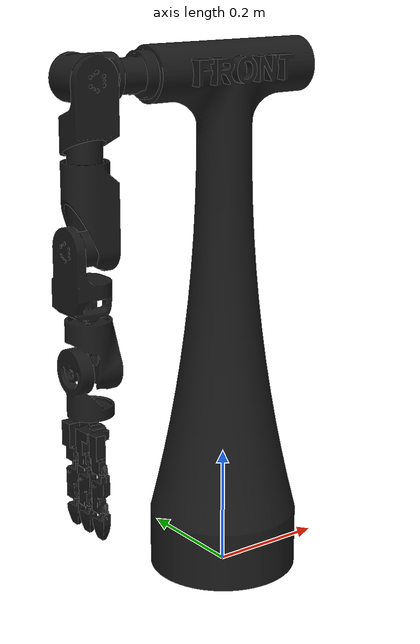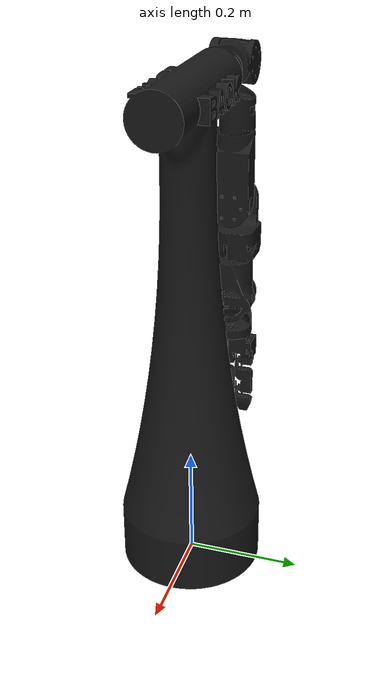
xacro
<?xml version="1.0"?>
<robot xmlns:xacro="http://www.ros.org/wiki/xacro" name="JAXV2_Assembly">

  <!-- Materials (shared across all assemblies) -->
  <material name="Acetal_Resin_White">
    <color rgba="0.098 0.098 0.098 1.0"/>
  </material>
  <material name="Generic">
    <color rgba="0.098 0.098 0.098 1.0"/>
  </material>

  <!-- Assembly includes -->
  <xacro:include filename="$(find JAXV2_Assembly_description)/urdf/assemblies/JAXV2_Assembly.urdf.xacro"/>

  <!-- Instantiate assemblies -->
  <xacro:JAXV2_Assembly prefix=""/>

</robot>

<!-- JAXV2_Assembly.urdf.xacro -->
<robot xmlns:xacro="http://www.ros.org/wiki/xacro" name="JAXV2_Assembly_macro">

  <xacro:macro name="JAXV2_Assembly" params="prefix">

    <!-- Links -->
    <link name="${prefix}base_link">
      <inertial>
        <origin xyz="0.000001 -0.000024 0.310385" rpy="0 0 0"/>
        <mass value="18.851839"/>
        <inertia ixx="1.411093e+00" ixy="-2.540148e-05" ixz="-3.122552e-06"
                 iyy="1.424626e+00" iyz="2.611578e-04" izz="1.017141e-01"/>
      </inertial>
      <visual>
        <origin xyz="0.000000 0.000000 0.000000" rpy="0.000000 0.000000 0.000000"/>
        <geometry>
          <mesh filename="package://JAXV2_Assembly_description/meshes/JAXV2_Assembly/base_link.dae" scale="1 1 1"/>
        </geometry>
        <material name="Acetal_Resin_White"/>
      </visual>
      <collision>
        <origin xyz="0.000000 0.000000 0.000000" rpy="0.000000 0.000000 0.000000"/>
        <geometry>
          <mesh filename="package://JAXV2_Assembly_description/meshes/JAXV2_Assembly/base_link_collision.stl" scale="0.01 0.01 0.01"/>
        </geometry>
      </collision>
    </link>

    <link name="${prefix}Shoulder_Pitch">
      <inertial>
        <origin xyz="-0.024397 0.000000 0.000306" rpy="0 0 0"/>
        <mass value="0.997346"/>
        <inertia ixx="3.940360e-04" ixy="0.000000e+00" ixz="-5.849335e-06"
                 iyy="4.417818e-04" iyz="0.000000e+00" izz="4.490818e-04"/>
      </inertial>
      <visual>
        <origin xyz="0.000000 0.000000 0.000000" rpy="0.000000 0.000000 0.000000"/>
        <geometry>
          <mesh filename="package://JAXV2_Assembly_description/meshes/JAXV2_Assembly/Shoulder_Pitch.dae" scale="1 1 1"/>
        </geometry>
        <material name="Acetal_Resin_White"/>
      </visual>
      <collision>
        <origin xyz="0.000000 0.000000 0.000000" rpy="0.000000 0.000000 0.000000"/>
        <geometry>
          <mesh filename="package://JAXV2_Assembly_description/meshes/JAXV2_Assembly/Shoulder_Pitch_collision.stl" scale="0.01 0.01 0.01"/>
        </geometry>
      </collision>
    </link>

    <link name="${prefix}Shoulder_Roll">
      <inertial>
        <origin xyz="0.002826 -0.000221 0.047977" rpy="0 0 0"/>
        <mass value="1.087699"/>
        <inertia ixx="5.655319e-04" ixy="4.646552e-06" ixz="-1.110163e-06"
                 iyy="5.931985e-04" iyz="4.857296e-07" izz="5.175399e-04"/>
      </inertial>
      <visual>
        <origin xyz="0.000000 0.000000 0.000000" rpy="1.570796 1.570796 0.000000"/>
        <geometry>
          <mesh filename="package://JAXV2_Assembly_description/meshes/JAXV2_Assembly/Shoulder_Roll.dae" scale="1 1 1"/>
        </geometry>
        <material name="Acetal_Resin_White"/>
      </visual>
      <collision>
        <origin xyz="0.000000 0.000000 0.000000" rpy="1.570796 1.570796 0.000000"/>
        <geometry>
          <mesh filename="package://JAXV2_Assembly_description/meshes/JAXV2_Assembly/Shoulder_Roll_collision.stl" scale="0.01 0.01 0.01"/>
        </geometry>
      </collision>
    </link>

    <link name="${prefix}Shoulder_Yaw">
      <inertial>
        <origin xyz="-0.000000 0.091392 0.022139" rpy="0 0 0"/>
        <mass value="1.145356"/>
        <inertia ixx="1.277749e-03" ixy="-3.698747e-11" ixz="-1.590802e-11"
                 iyy="6.057515e-04" iyz="-2.581956e-04" izz="1.242378e-03"/>
      </inertial>
      <visual>
        <origin xyz="0.000000 0.000000 -0.004500" rpy="1.570796 0.000000 0.000000"/>
        <geometry>
          <mesh filename="package://JAXV2_Assembly_description/meshes/JAXV2_Assembly/Shoulder_Yaw.dae" scale="1 1 1"/>
        </geometry>
        <material name="Acetal_Resin_White"/>
      </visual>
      <collision>
        <origin xyz="0.000000 0.000000 -0.004500" rpy="1.570796 0.000000 0.000000"/>
        <geometry>
          <mesh filename="package://JAXV2_Assembly_description/meshes/JAXV2_Assembly/Shoulder_Yaw_collision.stl" scale="0.01 0.01 0.01"/>
        </geometry>
      </collision>
    </link>

    <link name="${prefix}Upper_Arm">
      <inertial>
        <origin xyz="0.008735 0.000211 0.090878" rpy="0 0 0"/>
        <mass value="0.410582"/>
        <inertia ixx="1.212777e-03" ixy="-1.795709e-06" ixz="-2.958031e-05"
                 iyy="1.199811e-03" iyz="-3.363590e-06" izz="3.464644e-04"/>
      </inertial>
      <visual>
        <origin xyz="0.000000 0.000000 0.000000" rpy="3.141593 0.000000 0.000000"/>
        <geometry>
          <mesh filename="package://JAXV2_Assembly_description/meshes/JAXV2_Assembly/Upper_Arm.dae" scale="1 1 1"/>
        </geometry>
        <material name="Acetal_Resin_White"/>
      </visual>
      <collision>
        <origin xyz="0.000000 0.000000 0.000000" rpy="3.141593 0.000000 0.000000"/>
        <geometry>
          <mesh filename="package://JAXV2_Assembly_description/meshes/JAXV2_Assembly/Upper_Arm_collision.stl" scale="0.01 0.01 0.01"/>
        </geometry>
      </collision>
    </link>

    <link name="${prefix}Under_Arm">
      <inertial>
        <origin xyz="0.004802 0.058740 -0.011447" rpy="0 0 0"/>
        <mass value="0.346145"/>
        <inertia ixx="5.266168e-04" ixy="-3.744171e-05" ixz="9.809798e-06"
                 iyy="2.882880e-04" iyz="9.341698e-05" izz="5.469735e-04"/>
      </inertial>
      <visual>
        <origin xyz="0.000000 -0.000003 0.000000" rpy="1.570796 1.570796 0.000000"/>
        <geometry>
          <mesh filename="package://JAXV2_Assembly_description/meshes/JAXV2_Assembly/Under_Arm.dae" scale="1 1 1"/>
        </geometry>
        <material name="Acetal_Resin_White"/>
      </visual>
      <collision>
        <origin xyz="0.000000 -0.000003 0.000000" rpy="1.570796 1.570796 0.000000"/>
        <geometry>
          <mesh filename="package://JAXV2_Assembly_description/meshes/JAXV2_Assembly/Under_Arm_collision.stl" scale="0.01 0.01 0.01"/>
        </geometry>
      </collision>
    </link>

    <link name="${prefix}Wrist_Pitch">
      <inertial>
        <origin xyz="0.009082 0.002213 -0.043135" rpy="0 0 0"/>
        <mass value="0.189235"/>
        <inertia ixx="3.036172e-04" ixy="-2.101562e-06" ixz="3.435637e-05"
                 iyy="2.721912e-04" iyz="1.130097e-05" izz="1.661101e-04"/>
      </inertial>
      <visual>
        <origin xyz="0.000000 0.000000 -0.001000" rpy="0.000000 0.000000 0.000000"/>
        <geometry>
          <mesh filename="package://JAXV2_Assembly_description/meshes/JAXV2_Assembly/Wrist_Pitch.dae" scale="1 1 1"/>
        </geometry>
        <material name="Acetal_Resin_White"/>
      </visual>
      <collision>
        <origin xyz="0.000000 0.000000 -0.001000" rpy="0.000000 0.000000 0.000000"/>
        <geometry>
          <mesh filename="package://JAXV2_Assembly_description/meshes/JAXV2_Assembly/Wrist_Pitch_collision.stl" scale="0.01 0.01 0.01"/>
        </geometry>
      </collision>
    </link>

    <link name="${prefix}Wrist_yaw">
      <inertial>
        <origin xyz="-0.000000 0.032472 -0.004141" rpy="0 0 0"/>
        <mass value="0.146251"/>
        <inertia ixx="2.554734e-04" ixy="4.867768e-10" ixz="2.619650e-10"
                 iyy="1.104806e-04" iyz="6.185315e-05" izz="2.632011e-04"/>
      </inertial>
      <visual>
        <origin xyz="0.000000 0.000000 0.000000" rpy="1.570796 1.570796 0.000000"/>
        <geometry>
          <mesh filename="package://JAXV2_Assembly_description/meshes/JAXV2_Assembly/Wrist_yaw.dae" scale="1 1 1"/>
        </geometry>
        <material name="Acetal_Resin_White"/>
      </visual>
      <collision>
        <origin xyz="0.000000 0.000000 0.000000" rpy="1.570796 1.570796 0.000000"/>
        <geometry>
          <mesh filename="package://JAXV2_Assembly_description/meshes/JAXV2_Assembly/Wrist_yaw_collision.stl" scale="0.01 0.01 0.01"/>
        </geometry>
      </collision>
    </link>

    <link name="${prefix}MG996R">
      <inertial>
        <origin xyz="-0.014019 0.011455 -0.042237" rpy="0 0 0"/>
        <mass value="0.419885"/>
        <inertia ixx="3.899470e-04" ixy="2.237989e-05" ixz="-3.534616e-05"
                 iyy="1.972417e-04" iyz="-6.982530e-06" izz="2.768890e-04"/>
      </inertial>
      <visual>
        <origin xyz="-0.013500 0.009165 -0.057071" rpy="-3.141593 1.570796 0.000000"/>
        <geometry>
          <mesh filename="package://JAXV2_Assembly_description/meshes/JAXV2_Assembly/MG996R.dae" scale="1 1 1"/>
        </geometry>
        <material name="Generic"/>
      </visual>
      <collision>
        <origin xyz="-0.013500 0.009165 -0.057071" rpy="-3.141593 1.570796 0.000000"/>
        <geometry>
          <mesh filename="package://JAXV2_Assembly_description/meshes/JAXV2_Assembly/MG996R_collision.stl" scale="0.01 0.01 0.01"/>
        </geometry>
      </collision>
    </link>

    <link name="${prefix}RotationBody">
      <inertial>
        <origin xyz="-0.020645 0.024429 0.014918" rpy="0 0 0"/>
        <mass value="0.074463"/>
        <inertia ixx="2.153303e-05" ixy="2.944843e-07" ixz="4.350216e-07"
                 iyy="1.784337e-05" iyz="-2.656916e-06" izz="6.125770e-06"/>
      </inertial>
      <visual>
        <origin xyz="0.015500 0.034603 0.010897" rpy="-3.141593 -1.570796 0.000000"/>
        <geometry>
          <mesh filename="package://JAXV2_Assembly_description/meshes/JAXV2_Assembly/RotationBody.dae" scale="1 1 1"/>
        </geometry>
        <material name="Acetal_Resin_White"/>
      </visual>
      <collision>
        <origin xyz="0.015500 0.034603 0.010897" rpy="-3.141593 -1.570796 0.000000"/>
        <geometry>
          <mesh filename="package://JAXV2_Assembly_description/meshes/JAXV2_Assembly/RotationBody_collision.stl" scale="0.01 0.01 0.01"/>
        </geometry>
      </collision>
    </link>

    <link name="${prefix}Finger_1_1">
      <inertial>
        <origin xyz="-0.000005 -0.054778 -0.018767" rpy="0 0 0"/>
        <mass value="0.071419"/>
        <inertia ixx="1.885508e-05" ixy="9.291950e-09" ixz="-1.658307e-09"
                 iyy="5.819045e-06" iyz="-1.596518e-06" izz="1.478499e-05"/>
      </inertial>
      <visual>
        <origin xyz="0.006500 0.015250 -0.042800" rpy="1.570796 0.000000 -1.570796"/>
        <geometry>
          <mesh filename="package://JAXV2_Assembly_description/meshes/JAXV2_Assembly/Finger_1_1.dae" scale="1 1 1"/>
        </geometry>
        <material name="Acetal_Resin_White"/>
      </visual>
      <collision>
        <origin xyz="0.006500 0.015250 -0.042800" rpy="1.570796 0.000000 -1.570796"/>
        <geometry>
          <mesh filename="package://JAXV2_Assembly_description/meshes/JAXV2_Assembly/Finger_1_1_collision.stl" scale="0.01 0.01 0.01"/>
        </geometry>
      </collision>
    </link>

    <link name="${prefix}Finger_2_1">
      <inertial>
        <origin xyz="-0.000005 -0.054778 -0.018767" rpy="0 0 0"/>
        <mass value="0.071419"/>
        <inertia ixx="1.885509e-05" ixy="9.291950e-09" ixz="-1.657525e-09"
                 iyy="5.819047e-06" iyz="-1.596510e-06" izz="1.478499e-05"/>
      </inertial>
      <visual>
        <origin xyz="0.006500 0.015250 -0.005800" rpy="1.570796 0.000000 -1.570796"/>
        <geometry>
          <mesh filename="package://JAXV2_Assembly_description/meshes/JAXV2_Assembly/Finger_2_1.dae" scale="1 1 1"/>
        </geometry>
        <material name="Acetal_Resin_White"/>
      </visual>
      <collision>
        <origin xyz="0.006500 0.015250 -0.005800" rpy="1.570796 0.000000 -1.570796"/>
        <geometry>
          <mesh filename="package://JAXV2_Assembly_description/meshes/JAXV2_Assembly/Finger_2_1_collision.stl" scale="0.01 0.01 0.01"/>
        </geometry>
      </collision>
    </link>

    <link name="${prefix}Finger_3_1">
      <inertial>
        <origin xyz="-0.000005 -0.054778 -0.018767" rpy="0 0 0"/>
        <mass value="0.071419"/>
        <inertia ixx="1.885509e-05" ixy="9.298790e-09" ixz="-1.656854e-09"
                 iyy="5.819043e-06" iyz="-1.596511e-06" izz="1.478499e-05"/>
      </inertial>
      <visual>
        <origin xyz="0.036500 0.015250 -0.010815" rpy="-1.570796 0.000000 -1.570796"/>
        <geometry>
          <mesh filename="package://JAXV2_Assembly_description/meshes/JAXV2_Assembly/Finger_3_1.dae" scale="1 1 1"/>
        </geometry>
        <material name="Acetal_Resin_White"/>
      </visual>
      <collision>
        <origin xyz="0.036500 0.015250 -0.010815" rpy="-1.570796 0.000000 -1.570796"/>
        <geometry>
          <mesh filename="package://JAXV2_Assembly_description/meshes/JAXV2_Assembly/Finger_3_1_collision.stl" scale="0.01 0.01 0.01"/>
        </geometry>
      </collision>
    </link>

    <link name="${prefix}Finger_1_2">
      <inertial>
        <origin xyz="0.000000 -0.027873 -0.014105" rpy="0 0 0"/>
        <mass value="0.011312"/>
        <inertia ixx="2.212028e-06" ixy="0.000000e+00" ixz="0.000000e+00"
                 iyy="1.076266e-06" iyz="-3.114506e-07" izz="1.397398e-06"/>
      </inertial>
      <visual>
        <origin xyz="0.006738 0.079682 -0.043102" rpy="1.570796 0.000000 -1.570796"/>
        <geometry>
          <mesh filename="package://JAXV2_Assembly_description/meshes/JAXV2_Assembly/Finger_1_2.dae" scale="1 1 1"/>
        </geometry>
        <material name="Acetal_Resin_White"/>
      </visual>
      <collision>
        <origin xyz="0.006738 0.079682 -0.043102" rpy="1.570796 0.000000 -1.570796"/>
        <geometry>
          <mesh filename="package://JAXV2_Assembly_description/meshes/JAXV2_Assembly/Finger_1_2_collision.stl" scale="0.01 0.01 0.01"/>
        </geometry>
      </collision>
    </link>

    <link name="${prefix}Finger_2_2">
      <inertial>
        <origin xyz="0.000000 -0.027873 -0.014105" rpy="0 0 0"/>
        <mass value="0.011312"/>
        <inertia ixx="2.212028e-06" ixy="0.000000e+00" ixz="0.000000e+00"
                 iyy="1.076266e-06" iyz="-3.114506e-07" izz="1.397398e-06"/>
      </inertial>
      <visual>
        <origin xyz="0.006500 0.080250 -0.005800" rpy="1.570796 0.000000 -1.570796"/>
        <geometry>
          <mesh filename="package://JAXV2_Assembly_description/meshes/JAXV2_Assembly/Finger_2_2.dae" scale="1 1 1"/>
        </geometry>
        <material name="Acetal_Resin_White"/>
      </visual>
      <collision>
        <origin xyz="0.006500 0.080250 -0.005800" rpy="1.570796 0.000000 -1.570796"/>
        <geometry>
          <mesh filename="package://JAXV2_Assembly_description/meshes/JAXV2_Assembly/Finger_2_2_collision.stl" scale="0.01 0.01 0.01"/>
        </geometry>
      </collision>
    </link>

    <link name="${prefix}Finger_3_2">
      <inertial>
        <origin xyz="0.000000 -0.027873 -0.014105" rpy="0 0 0"/>
        <mass value="0.011312"/>
        <inertia ixx="2.212028e-06" ixy="0.000000e+00" ixz="0.000000e+00"
                 iyy="1.076266e-06" iyz="-3.114506e-07" izz="1.397398e-06"/>
      </inertial>
      <visual>
        <origin xyz="0.036500 0.080250 -0.010815" rpy="-1.570796 0.000000 -1.570796"/>
        <geometry>
          <mesh filename="package://JAXV2_Assembly_description/meshes/JAXV2_Assembly/Finger_3_2.dae" scale="1 1 1"/>
        </geometry>
        <material name="Acetal_Resin_White"/>
      </visual>
      <collision>
        <origin xyz="0.036500 0.080250 -0.010815" rpy="-1.570796 0.000000 -1.570796"/>
        <geometry>
          <mesh filename="package://JAXV2_Assembly_description/meshes/JAXV2_Assembly/Finger_3_2_collision.stl" scale="0.01 0.01 0.01"/>
        </geometry>
      </collision>
    </link>

    <!-- Joints (internal to assembly) -->
    <joint name="${prefix}base_link_to_shoulder_pitch" type="fixed">
      <parent link="${prefix}base_link"/>
      <child link="${prefix}Shoulder_Pitch"/>
      <origin xyz="-0.160000 0.000000 0.850000" rpy="0.000000 0.000000 0.000000"/>
    </joint>

    <joint name="${prefix}shoulder_pitch_to_shoulder_roll" type="revolute">
      <parent link="${prefix}Shoulder_Pitch"/>
      <child link="${prefix}Shoulder_Roll"/>
      <origin xyz="-0.052000 0.000000 0.000000" rpy="-1.570796 0.000000 1.570796"/>
      <axis xyz="0.000000 0.000000 1.000000"/>
      <limit lower="-0.785398" upper="0.785398" effort="100.0" velocity="1.00"/>
    </joint>

    <joint name="${prefix}shoulder_roll_to_shoulder_yaw" type="revolute">
      <parent link="${prefix}Shoulder_Roll"/>
      <child link="${prefix}Shoulder_Yaw"/>
      <origin xyz="-0.024500 0.000000 0.050000" rpy="0.000000 1.570796 0.000000"/>
      <axis xyz="0.000000 0.000000 1.000000"/>
      <limit lower="0.000000" upper="0.785398" effort="100.0" velocity="1.00"/>
    </joint>

    <joint name="${prefix}shoulder_yaw_to_upper_arm" type="revolute">
      <parent link="${prefix}Shoulder_Yaw"/>
      <child link="${prefix}Upper_Arm"/>
      <origin xyz="0.000000 0.127000 0.025500" rpy="-1.570796 0.000000 0.000000"/>
      <axis xyz="0.000000 0.000000 1.000000"/>
      <limit lower="-1.570796" upper="4.188790" effort="100.0" velocity="1.00"/>
    </joint>

    <joint name="${prefix}upper_arm_to_under_arm" type="revolute">
      <parent link="${prefix}Upper_Arm"/>
      <child link="${prefix}Under_Arm"/>
      <origin xyz="-0.024500 -0.000208 0.129792" rpy="1.570796 0.000000 -1.570796"/>
      <axis xyz="0.000000 0.000000 1.000000"/>
      <limit lower="-1.832596" upper="1.832596" effort="100.0" velocity="1.00"/>
    </joint>

    <joint name="${prefix}under_arm_to_wrist_pitch" type="revolute">
      <parent link="${prefix}Under_Arm"/>
      <child link="${prefix}Wrist_Pitch"/>
      <origin xyz="0.000000 0.120997 -0.024500" rpy="1.570796 1.570796 0.000000"/>
      <axis xyz="0.000000 0.000000 1.000000"/>
      <limit lower="-1.570796" upper="1.570796" effort="100.0" velocity="1.00"/>
    </joint>

    <joint name="${prefix}wrist_pitch_to_wrist_yaw" type="revolute">
      <parent link="${prefix}Wrist_Pitch"/>
      <child link="${prefix}Wrist_yaw"/>
      <origin xyz="-0.020000 0.000000 -0.071200" rpy="-1.570796 0.000000 1.570796"/>
      <axis xyz="0.000000 0.000000 1.000000"/>
      <limit lower="-1.570796" upper="1.570796" effort="100.0" velocity="1.00"/>
    </joint>

    <joint name="${prefix}wrist_yaw_to_hand_base" type="revolute">
      <parent link="${prefix}Wrist_yaw"/>
      <child link="${prefix}MG996R"/>
      <origin xyz="0.000000 0.077000 -0.020000" rpy="1.570796 1.570796 0.000000"/>
      <axis xyz="0.000000 0.000000 1.000000"/>
      <limit lower="-2.094395" upper="2.094395" effort="100.0" velocity="1.00"/>
    </joint>

    <joint name="${prefix}hand_base_to_rotation_base" type="revolute">
      <parent link="${prefix}MG996R"/>
      <child link="${prefix}RotationBody"/>
      <origin xyz="0.002087 -0.025561 -0.045758" rpy="3.141593 0.000000 0.000000"/>
      <axis xyz="0.000000 0.000000 1.000000"/>
      <limit lower="-3.141593" upper="0.000000" effort="100.0" velocity="1.00"/>
    </joint>

    <joint name="${prefix}hand_base_to_finger_1_1" type="revolute">
      <parent link="${prefix}MG996R"/>
      <child link="${prefix}Finger_1_1"/>
      <origin xyz="-0.020000 -0.033335 -0.072321" rpy="1.570796 0.000000 0.000000"/>
      <axis xyz="0.000000 0.000000 1.000000"/>
      <limit lower="-1.570796" upper="1.570796" effort="100.0" velocity="1.00"/>
    </joint>

    <joint name="${prefix}hand_base_to_finger_2_1" type="revolute">
      <parent link="${prefix}MG996R"/>
      <child link="${prefix}Finger_2_1"/>
      <origin xyz="-0.020000 0.003665 -0.072321" rpy="1.570796 0.000000 0.000000"/>
      <axis xyz="0.000000 0.000000 1.000000"/>
      <limit lower="-1.570796" upper="1.570796" effort="100.0" velocity="1.00"/>
    </joint>

    <joint name="${prefix}rotation_base_to_finger_3_1" type="revolute">
      <parent link="${prefix}RotationBody"/>
      <child link="${prefix}Finger_3_1"/>
      <origin xyz="-0.021000 0.045117 0.026147" rpy="-1.570796 0.000000 0.000000"/>
      <axis xyz="0.000000 0.000000 1.000000"/>
      <limit lower="-1.570796" upper="1.570796" effort="100.0" velocity="1.00"/>
    </joint>

    <joint name="${prefix}finger_1_1_to_finger_1_2" type="revolute">
      <parent link="${prefix}Finger_1_1"/>
      <child link="${prefix}Finger_1_2"/>
      <origin xyz="0.000000 -0.065000 -0.000300" rpy="0.000000 0.000000 0.000000"/>
      <axis xyz="0.000000 0.000000 1.000000"/>
      <limit lower="0.000000" upper="2.094395" effort="100.0" velocity="1.00"/>
    </joint>

    <joint name="${prefix}finger_1_2_to_finger_2_2" type="revolute">
      <parent link="${prefix}Finger_2_1"/>
      <child link="${prefix}Finger_2_2"/>
      <origin xyz="0.000000 -0.065000 -0.000300" rpy="0.000000 0.000000 0.000000"/>
      <axis xyz="0.000000 0.000000 1.000000"/>
      <limit lower="0.000000" upper="2.094395" effort="100.0" velocity="1.00"/>
    </joint>

    <joint name="${prefix}finger_3_1_to_finger_3_2" type="revolute">
      <parent link="${prefix}Finger_3_1"/>
      <child link="${prefix}Finger_3_2"/>
      <origin xyz="0.000000 -0.065000 -0.000300" rpy="0.000000 0.000000 0.000000"/>
      <axis xyz="0.000000 0.000000 1.000000"/>
      <limit lower="0.000000" upper="2.094395" effort="100.0" velocity="1.00"/>
    </joint>

    <!-- ROS 2 control: generated generic system -->
    <ros2_control name="${prefix}JAXV2_Assembly_system" type="system">
      <hardware>
        <plugin>mock_components/GenericSystem</plugin>
        <param name="cmd_topic">sim/JAXV2_Assembly_system/cmd</param>
        <param name="state_topic">sim/JAXV2_Assembly_system/state</param>
      </hardware>

      <joint name="${prefix}finger_1_1_to_finger_1_2">
        <command_interface name="position"/>
        <command_interface name="velocity"/>
        <state_interface name="position">
          <param name="initial_value">0.0</param>
        </state_interface>
        <state_interface name="velocity"/>
        <state_interface name="effort"/>
      </joint>
      <joint name="${prefix}finger_1_2_to_finger_2_2">
        <command_interface name="position"/>
        <command_interface name="velocity"/>
        <state_interface name="position">
          <param name="initial_value">0.0</param>
        </state_interface>
        <state_interface name="velocity"/>
        <state_interface name="effort"/>
      </joint>
      <joint name="${prefix}finger_3_1_to_finger_3_2">
        <command_interface name="position"/>
        <command_interface name="velocity"/>
        <state_interface name="position">
          <param name="initial_value">0.0</param>
        </state_interface>
        <state_interface name="velocity"/>
        <state_interface name="effort"/>
      </joint>
      <joint name="${prefix}hand_base_to_finger_1_1">
        <command_interface name="position"/>
        <command_interface name="velocity"/>
        <state_interface name="position">
          <param name="initial_value">0.0</param>
        </state_interface>
        <state_interface name="velocity"/>
        <state_interface name="effort"/>
      </joint>
      <joint name="${prefix}hand_base_to_finger_2_1">
        <command_interface name="position"/>
        <command_interface name="velocity"/>
        <state_interface name="position">
          <param name="initial_value">0.0</param>
        </state_interface>
        <state_interface name="velocity"/>
        <state_interface name="effort"/>
      </joint>
      <joint name="${prefix}hand_base_to_rotation_base">
        <command_interface name="position"/>
        <command_interface name="velocity"/>
        <state_interface name="position">
          <param name="initial_value">0.0</param>
        </state_interface>
        <state_interface name="velocity"/>
        <state_interface name="effort"/>
      </joint>
      <joint name="${prefix}rotation_base_to_finger_3_1">
        <command_interface name="position"/>
        <command_interface name="velocity"/>
        <state_interface name="position">
          <param name="initial_value">0.0</param>
        </state_interface>
        <state_interface name="velocity"/>
        <state_interface name="effort"/>
      </joint>
      <joint name="${prefix}shoulder_pitch_to_shoulder_roll">
        <command_interface name="position"/>
        <command_interface name="velocity"/>
        <state_interface name="position">
          <param name="initial_value">0.0</param>
        </state_interface>
        <state_interface name="velocity"/>
        <state_interface name="effort"/>
      </joint>
      <joint name="${prefix}shoulder_roll_to_shoulder_yaw">
        <command_interface name="position"/>
        <command_interface name="velocity"/>
        <state_interface name="position">
          <param name="initial_value">0.0</param>
        </state_interface>
        <state_interface name="velocity"/>
        <state_interface name="effort"/>
      </joint>
      <joint name="${prefix}shoulder_yaw_to_upper_arm">
        <command_interface name="position"/>
        <command_interface name="velocity"/>
        <state_interface name="position">
          <param name="initial_value">0.0</param>
        </state_interface>
        <state_interface name="velocity"/>
        <state_interface name="effort"/>
      </joint>
      <joint name="${prefix}under_arm_to_wrist_pitch">
        <command_interface name="position"/>
        <command_interface name="velocity"/>
        <state_interface name="position">
          <param name="initial_value">0.0</param>
        </state_interface>
        <state_interface name="velocity"/>
        <state_interface name="effort"/>
      </joint>
      <joint name="${prefix}upper_arm_to_under_arm">
        <command_interface name="position"/>
        <command_interface name="velocity"/>
        <state_interface name="position">
          <param name="initial_value">0.0</param>
        </state_interface>
        <state_interface name="velocity"/>
        <state_interface name="effort"/>
      </joint>
      <joint name="${prefix}wrist_pitch_to_wrist_yaw">
        <command_interface name="position"/>
        <command_interface name="velocity"/>
        <state_interface name="position">
          <param name="initial_value">0.0</param>
        </state_interface>
        <state_interface name="velocity"/>
        <state_interface name="effort"/>
      </joint>
      <joint name="${prefix}wrist_yaw_to_hand_base">
        <command_interface name="position"/>
        <command_interface name="velocity"/>
        <state_interface name="position">
          <param name="initial_value">0.0</param>
        </state_interface>
        <state_interface name="velocity"/>
        <state_interface name="effort"/>
      </joint>
    </ros2_control>

  </xacro:macro>

</robot>
